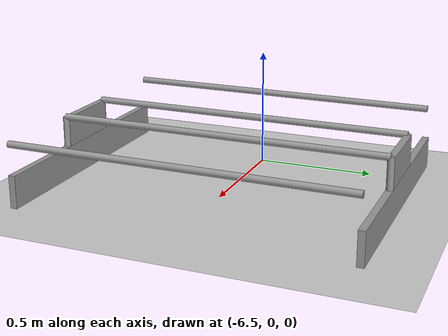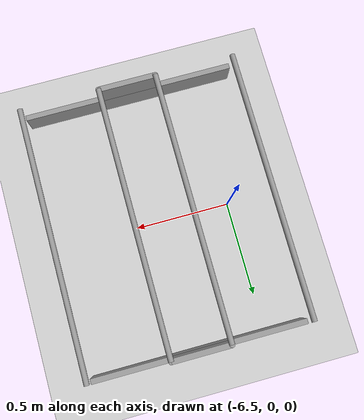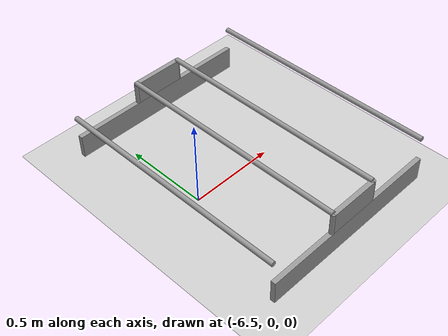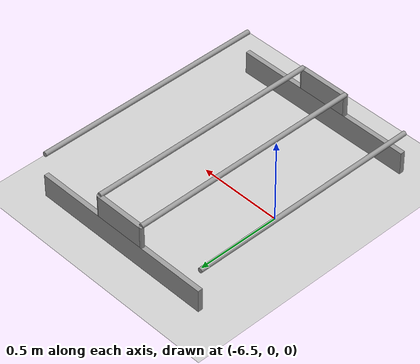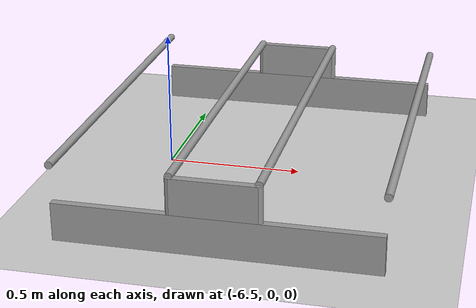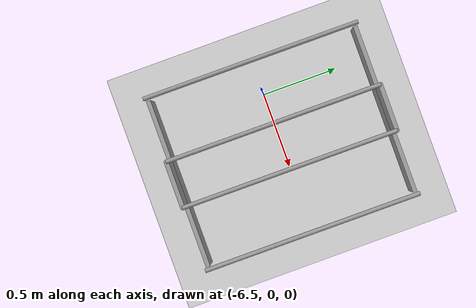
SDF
<sdf version="1.7">
 <world name="default">
  <model name="ground_plane">
   <static>1</static>
   <link name="link">
    <collision name="collision">
     <geometry><plane><normal>0 0 1</normal><size>100 100</size></plane></geometry>
     <surface>
      <contact><collide_bitmask>65535</collide_bitmask></contact>
      <friction><ode><mu>100</mu><mu2>50</mu2></ode></friction>
     </surface>
    </collision>
    <visual name="visual">
     <cast_shadows>0</cast_shadows>
     <geometry><plane><normal>0 0 1</normal><size>100 100</size></plane></geometry>
     <material>
      <script><uri>file://media/materials/scripts/gazebo.material</uri><name>Gazebo/Grey</name></script>
     </material>
    </visual>
   </link>
  </model>
  <model name="BlibliTrolley">
   <link name="link_0">
    <inertial>
     <mass>1</mass>
     <inertia>
      <ixx>0.166667</ixx>
      <ixy>0</ixy>
      <ixz>0</ixz>
      <iyy>0.166667</iyy>
      <iyz>0</iyz>
      <izz>0.166667</izz>
     </inertia>
    </inertial>
    <pose>0.7 0 0.050833 0 -0 0</pose>
    <visual name="visual">
     <geometry><box><size>0.0284 1.12 0.17</size></box></geometry>
     <material>
      <lighting>1</lighting>
      <script><uri>file://media/materials/scripts/gazebo.material</uri><name>Gazebo/Grey</name></script>
      <shader type="pixel"><normal_map>__default__</normal_map></shader>
      <ambient>0.3 0.3 0.3 1</ambient>
      <diffuse>0.7 0.7 0.7 1</diffuse>
      <specular>0.01 0.01 0.01 1</specular>
      <emissive>0 0 0 1</emissive>
     </material>
    </visual>
    <collision name="collision">
     <geometry><box><size>0.0284 1.12 0.17</size></box></geometry>
     <surface>
      <friction>
       <ode><mu>1</mu><mu2>1</mu2><fdir1>0 0 0</fdir1><slip1>0</slip1><slip2>0</slip2></ode>
       <torsional>
        <coefficient>1</coefficient>
        <patch_radius>0</patch_radius>
        <surface_radius>0</surface_radius>
        <use_patch_radius>1</use_patch_radius>
        <ode><slip>0</slip></ode>
       </torsional>
      </friction>
      <bounce><restitution_coefficient>0</restitution_coefficient><threshold>1e+06</threshold></bounce>
      <contact>
       <collide_without_contact>0</collide_without_contact>
       <collide_without_contact_bitmask>1</collide_without_contact_bitmask>
       <collide_bitmask>1</collide_bitmask>
       <ode>
        <soft_cfm>0</soft_cfm>
        <soft_erp>0.2</soft_erp>
        <kp>1e+13</kp>
        <kd>1</kd>
        <max_vel>0.01</max_vel>
        <min_depth>0</min_depth>
       </ode>
       <bullet>
        <split_impulse>1</split_impulse>
        <split_impulse_penetration_threshold>-0.01</split_impulse_penetration_threshold>
        <soft_cfm>0</soft_cfm>
        <soft_erp>0.2</soft_erp>
        <kp>1e+13</kp>
        <kd>1</kd>
       </bullet>
      </contact>
     </surface>
    </collision>
   </link>
   <link name="link_0_clone">
    <inertial>
     <mass>1</mass>
     <inertia>
      <ixx>0.166667</ixx>
      <ixy>0</ixy>
      <ixz>0</ixz>
      <iyy>0.166667</iyy>
      <iyz>0</iyz>
      <izz>0.166667</izz>
     </inertia>
    </inertial>
    <pose>-0.7 0 0.050833 0 -0 0</pose>
    <visual name="visual">
     <geometry><box><size>0.0284 1.12 0.17</size></box></geometry>
     <material>
      <lighting>1</lighting>
      <script><uri>file://media/materials/scripts/gazebo.material</uri><name>Gazebo/Grey</name></script>
      <shader type="pixel"><normal_map>__default__</normal_map></shader>
      <ambient>0.3 0.3 0.3 1</ambient>
      <diffuse>0.7 0.7 0.7 1</diffuse>
      <specular>0.01 0.01 0.01 1</specular>
      <emissive>0 0 0 1</emissive>
     </material>
    </visual>
    <collision name="collision">
     <geometry><box><size>0.0284 1.12 0.17</size></box></geometry>
     <surface>
      <friction>
       <ode><mu>1</mu><mu2>1</mu2><fdir1>0 0 0</fdir1><slip1>0</slip1><slip2>0</slip2></ode>
       <torsional>
        <coefficient>1</coefficient>
        <patch_radius>0</patch_radius>
        <surface_radius>0</surface_radius>
        <use_patch_radius>1</use_patch_radius>
        <ode><slip>0</slip></ode>
       </torsional>
      </friction>
      <bounce><restitution_coefficient>0</restitution_coefficient><threshold>1e+06</threshold></bounce>
      <contact>
       <collide_without_contact>0</collide_without_contact>
       <collide_without_contact_bitmask>1</collide_without_contact_bitmask>
       <collide_bitmask>1</collide_bitmask>
       <ode>
        <soft_cfm>0</soft_cfm>
        <soft_erp>0.2</soft_erp>
        <kp>1e+13</kp>
        <kd>1</kd>
        <max_vel>0.01</max_vel>
        <min_depth>0</min_depth>
       </ode>
       <bullet>
        <split_impulse>1</split_impulse>
        <split_impulse_penetration_threshold>-0.01</split_impulse_penetration_threshold>
        <soft_cfm>0</soft_cfm>
        <soft_erp>0.2</soft_erp>
        <kp>1e+13</kp>
        <kd>1</kd>
       </bullet>
      </contact>
     </surface>
    </collision>
   </link>
   <link name="link_0_clone_clone">
    <inertial>
     <mass>1</mass>
     <inertia>
      <ixx>0.166667</ixx>
      <ixy>0</ixy>
      <ixz>0</ixz>
      <iyy>0.166667</iyy>
      <iyz>0</iyz>
      <izz>0.166667</izz>
     </inertia>
    </inertial>
    <pose>-0.7 0 0.200833 0 -0 0</pose>
    <visual name="visual">
     <geometry><box><size>0.0284 0.3 0.13</size></box></geometry>
     <material>
      <lighting>1</lighting>
      <script><uri>file://media/materials/scripts/gazebo.material</uri><name>Gazebo/Grey</name></script>
      <shader type="pixel"><normal_map>__default__</normal_map></shader>
      <ambient>0.3 0.3 0.3 1</ambient>
      <diffuse>0.7 0.7 0.7 1</diffuse>
      <specular>0.01 0.01 0.01 1</specular>
      <emissive>0 0 0 1</emissive>
     </material>
    </visual>
    <collision name="collision">
     <geometry><box><size>0.0284 0.3 0.13</size></box></geometry>
     <surface>
      <friction>
       <ode><mu>1</mu><mu2>1</mu2><fdir1>0 0 0</fdir1><slip1>0</slip1><slip2>0</slip2></ode>
       <torsional>
        <coefficient>1</coefficient>
        <patch_radius>0</patch_radius>
        <surface_radius>0</surface_radius>
        <use_patch_radius>1</use_patch_radius>
        <ode><slip>0</slip></ode>
       </torsional>
      </friction>
      <bounce><restitution_coefficient>0</restitution_coefficient><threshold>1e+06</threshold></bounce>
      <contact>
       <collide_without_contact>0</collide_without_contact>
       <collide_without_contact_bitmask>1</collide_without_contact_bitmask>
       <collide_bitmask>1</collide_bitmask>
       <ode>
        <soft_cfm>0</soft_cfm>
        <soft_erp>0.2</soft_erp>
        <kp>1e+13</kp>
        <kd>1</kd>
        <max_vel>0.01</max_vel>
        <min_depth>0</min_depth>
       </ode>
       <bullet>
        <split_impulse>1</split_impulse>
        <split_impulse_penetration_threshold>-0.01</split_impulse_penetration_threshold>
        <soft_cfm>0</soft_cfm>
        <soft_erp>0.2</soft_erp>
        <kp>1e+13</kp>
        <kd>1</kd>
       </bullet>
      </contact>
     </surface>
    </collision>
   </link>
   <link name="link_0_clone_clone_clone">
    <inertial>
     <mass>1</mass>
     <inertia>
      <ixx>0.166667</ixx>
      <ixy>0</ixy>
      <ixz>0</ixz>
      <iyy>0.166667</iyy>
      <iyz>0</iyz>
      <izz>0.166667</izz>
     </inertia>
    </inertial>
    <pose>0.7 0 0.200833 0 -0 0</pose>
    <visual name="visual">
     <geometry><box><size>0.0284 0.3 0.13</size></box></geometry>
     <material>
      <lighting>1</lighting>
      <script><uri>file://media/materials/scripts/gazebo.material</uri><name>Gazebo/Grey</name></script>
      <shader type="pixel"><normal_map>__default__</normal_map></shader>
      <ambient>0.3 0.3 0.3 1</ambient>
      <diffuse>0.7 0.7 0.7 1</diffuse>
      <specular>0.01 0.01 0.01 1</specular>
      <emissive>0 0 0 1</emissive>
     </material>
    </visual>
    <collision name="collision">
     <geometry><box><size>0.0284 0.3 0.13</size></box></geometry>
     <surface>
      <friction>
       <ode><mu>1</mu><mu2>1</mu2><fdir1>0 0 0</fdir1><slip1>0</slip1><slip2>0</slip2></ode>
       <torsional>
        <coefficient>1</coefficient>
        <patch_radius>0</patch_radius>
        <surface_radius>0</surface_radius>
        <use_patch_radius>1</use_patch_radius>
        <ode><slip>0</slip></ode>
       </torsional>
      </friction>
      <bounce><restitution_coefficient>0</restitution_coefficient><threshold>1e+06</threshold></bounce>
      <contact>
       <collide_without_contact>0</collide_without_contact>
       <collide_without_contact_bitmask>1</collide_without_contact_bitmask>
       <collide_bitmask>1</collide_bitmask>
       <ode>
        <soft_cfm>0</soft_cfm>
        <soft_erp>0.2</soft_erp>
        <kp>1e+13</kp>
        <kd>1</kd>
        <max_vel>0.01</max_vel>
        <min_depth>0</min_depth>
       </ode>
       <bullet>
        <split_impulse>1</split_impulse>
        <split_impulse_penetration_threshold>-0.01</split_impulse_penetration_threshold>
        <soft_cfm>0</soft_cfm>
        <soft_erp>0.2</soft_erp>
        <kp>1e+13</kp>
        <kd>1</kd>
       </bullet>
      </contact>
     </surface>
    </collision>
   </link>
   <link name="link_1">
    <inertial>
     <mass>1</mass>
     <inertia><ixx>0.145833</ixx><ixy>0</ixy><ixz>0</ixz><iyy>0.145833</iyy><iyz>0</iyz><izz>0.125</izz></inertia>
    </inertial>
    <pose>0.7 0.15 0.200833 0 -0 0</pose>
    <visual name="visual">
     <geometry><cylinder><radius>0.0142</radius><length>0.13</length></cylinder></geometry>
     <material>
      <lighting>1</lighting>
      <script><uri>file://media/materials/scripts/gazebo.material</uri><name>Gazebo/Grey</name></script>
      <shader type="pixel"><normal_map>__default__</normal_map></shader>
      <ambient>0.3 0.3 0.3 1</ambient>
      <diffuse>0.7 0.7 0.7 1</diffuse>
      <specular>0.01 0.01 0.01 1</specular>
      <emissive>0 0 0 1</emissive>
     </material>
    </visual>
    <collision name="collision">
     <geometry><cylinder><radius>0.0142</radius><length>0.13</length></cylinder></geometry>
     <surface>
      <friction>
       <ode><mu>1</mu><mu2>1</mu2><fdir1>0 0 0</fdir1><slip1>0</slip1><slip2>0</slip2></ode>
       <torsional>
        <coefficient>1</coefficient>
        <patch_radius>0</patch_radius>
        <surface_radius>0</surface_radius>
        <use_patch_radius>1</use_patch_radius>
        <ode><slip>0</slip></ode>
       </torsional>
      </friction>
      <bounce><restitution_coefficient>0</restitution_coefficient><threshold>1e+06</threshold></bounce>
      <contact>
       <collide_without_contact>0</collide_without_contact>
       <collide_without_contact_bitmask>1</collide_without_contact_bitmask>
       <collide_bitmask>1</collide_bitmask>
       <ode>
        <soft_cfm>0</soft_cfm>
        <soft_erp>0.2</soft_erp>
        <kp>1e+13</kp>
        <kd>1</kd>
        <max_vel>0.01</max_vel>
        <min_depth>0</min_depth>
       </ode>
       <bullet>
        <split_impulse>1</split_impulse>
        <split_impulse_penetration_threshold>-0.01</split_impulse_penetration_threshold>
        <soft_cfm>0</soft_cfm>
        <soft_erp>0.2</soft_erp>
        <kp>1e+13</kp>
        <kd>1</kd>
       </bullet>
      </contact>
     </surface>
    </collision>
   </link>
   <link name="link_1_clone">
    <inertial>
     <mass>1</mass>
     <inertia><ixx>0.145833</ixx><ixy>0</ixy><ixz>0</ixz><iyy>0.145833</iyy><iyz>0</iyz><izz>0.125</izz></inertia>
    </inertial>
    <pose>0.7 -0.15 0.200833 0 -0 0</pose>
    <visual name="visual">
     <geometry><cylinder><radius>0.0142</radius><length>0.13</length></cylinder></geometry>
     <material>
      <lighting>1</lighting>
      <script><uri>file://media/materials/scripts/gazebo.material</uri><name>Gazebo/Grey</name></script>
      <shader type="pixel"><normal_map>__default__</normal_map></shader>
      <ambient>0.3 0.3 0.3 1</ambient>
      <diffuse>0.7 0.7 0.7 1</diffuse>
      <specular>0.01 0.01 0.01 1</specular>
      <emissive>0 0 0 1</emissive>
     </material>
    </visual>
    <collision name="collision">
     <geometry><cylinder><radius>0.0142</radius><length>0.13</length></cylinder></geometry>
     <surface>
      <friction>
       <ode><mu>1</mu><mu2>1</mu2><fdir1>0 0 0</fdir1><slip1>0</slip1><slip2>0</slip2></ode>
       <torsional>
        <coefficient>1</coefficient>
        <patch_radius>0</patch_radius>
        <surface_radius>0</surface_radius>
        <use_patch_radius>1</use_patch_radius>
        <ode><slip>0</slip></ode>
       </torsional>
      </friction>
      <bounce><restitution_coefficient>0</restitution_coefficient><threshold>1e+06</threshold></bounce>
      <contact>
       <collide_without_contact>0</collide_without_contact>
       <collide_without_contact_bitmask>1</collide_without_contact_bitmask>
       <collide_bitmask>1</collide_bitmask>
       <ode>
        <soft_cfm>0</soft_cfm>
        <soft_erp>0.2</soft_erp>
        <kp>1e+13</kp>
        <kd>1</kd>
        <max_vel>0.01</max_vel>
        <min_depth>0</min_depth>
       </ode>
       <bullet>
        <split_impulse>1</split_impulse>
        <split_impulse_penetration_threshold>-0.01</split_impulse_penetration_threshold>
        <soft_cfm>0</soft_cfm>
        <soft_erp>0.2</soft_erp>
        <kp>1e+13</kp>
        <kd>1</kd>
       </bullet>
      </contact>
     </surface>
    </collision>
   </link>
   <link name="link_1_clone_0">
    <inertial>
     <mass>1</mass>
     <inertia><ixx>0.145833</ixx><ixy>0</ixy><ixz>0</ixz><iyy>0.145833</iyy><iyz>0</iyz><izz>0.125</izz></inertia>
    </inertial>
    <pose>-0.7 0.15 0.200833 0 -0 0</pose>
    <visual name="visual">
     <geometry><cylinder><radius>0.0142</radius><length>0.13</length></cylinder></geometry>
     <material>
      <lighting>1</lighting>
      <script><uri>file://media/materials/scripts/gazebo.material</uri><name>Gazebo/Grey</name></script>
      <shader type="pixel"><normal_map>__default__</normal_map></shader>
      <ambient>0.3 0.3 0.3 1</ambient>
      <diffuse>0.7 0.7 0.7 1</diffuse>
      <specular>0.01 0.01 0.01 1</specular>
      <emissive>0 0 0 1</emissive>
     </material>
    </visual>
    <collision name="collision">
     <geometry><cylinder><radius>0.0142</radius><length>0.13</length></cylinder></geometry>
     <surface>
      <friction>
       <ode><mu>1</mu><mu2>1</mu2><fdir1>0 0 0</fdir1><slip1>0</slip1><slip2>0</slip2></ode>
       <torsional>
        <coefficient>1</coefficient>
        <patch_radius>0</patch_radius>
        <surface_radius>0</surface_radius>
        <use_patch_radius>1</use_patch_radius>
        <ode><slip>0</slip></ode>
       </torsional>
      </friction>
      <bounce><restitution_coefficient>0</restitution_coefficient><threshold>1e+06</threshold></bounce>
      <contact>
       <collide_without_contact>0</collide_without_contact>
       <collide_without_contact_bitmask>1</collide_without_contact_bitmask>
       <collide_bitmask>1</collide_bitmask>
       <ode>
        <soft_cfm>0</soft_cfm>
        <soft_erp>0.2</soft_erp>
        <kp>1e+13</kp>
        <kd>1</kd>
        <max_vel>0.01</max_vel>
        <min_depth>0</min_depth>
       </ode>
       <bullet>
        <split_impulse>1</split_impulse>
        <split_impulse_penetration_threshold>-0.01</split_impulse_penetration_threshold>
        <soft_cfm>0</soft_cfm>
        <soft_erp>0.2</soft_erp>
        <kp>1e+13</kp>
        <kd>1</kd>
       </bullet>
      </contact>
     </surface>
    </collision>
   </link>
   <link name="link_1_clone_1">
    <inertial>
     <mass>1</mass>
     <inertia><ixx>0.145833</ixx><ixy>0</ixy><ixz>0</ixz><iyy>0.145833</iyy><iyz>0</iyz><izz>0.125</izz></inertia>
    </inertial>
    <pose>-0.7 -0.15 0.200833 0 -0 0</pose>
    <visual name="visual">
     <geometry><cylinder><radius>0.0142</radius><length>0.13</length></cylinder></geometry>
     <material>
      <lighting>1</lighting>
      <script><uri>file://media/materials/scripts/gazebo.material</uri><name>Gazebo/Grey</name></script>
      <shader type="pixel"><normal_map>__default__</normal_map></shader>
      <ambient>0.3 0.3 0.3 1</ambient>
      <diffuse>0.7 0.7 0.7 1</diffuse>
      <specular>0.01 0.01 0.01 1</specular>
      <emissive>0 0 0 1</emissive>
     </material>
    </visual>
    <collision name="collision">
     <geometry><cylinder><radius>0.0142</radius><length>0.13</length></cylinder></geometry>
     <surface>
      <friction>
       <ode><mu>1</mu><mu2>1</mu2><fdir1>0 0 0</fdir1><slip1>0</slip1><slip2>0</slip2></ode>
       <torsional>
        <coefficient>1</coefficient>
        <patch_radius>0</patch_radius>
        <surface_radius>0</surface_radius>
        <use_patch_radius>1</use_patch_radius>
        <ode><slip>0</slip></ode>
       </torsional>
      </friction>
      <bounce><restitution_coefficient>0</restitution_coefficient><threshold>1e+06</threshold></bounce>
      <contact>
       <collide_without_contact>0</collide_without_contact>
       <collide_without_contact_bitmask>1</collide_without_contact_bitmask>
       <collide_bitmask>1</collide_bitmask>
       <ode>
        <soft_cfm>0</soft_cfm>
        <soft_erp>0.2</soft_erp>
        <kp>1e+13</kp>
        <kd>1</kd>
        <max_vel>0.01</max_vel>
        <min_depth>0</min_depth>
       </ode>
       <bullet>
        <split_impulse>1</split_impulse>
        <split_impulse_penetration_threshold>-0.01</split_impulse_penetration_threshold>
        <soft_cfm>0</soft_cfm>
        <soft_erp>0.2</soft_erp>
        <kp>1e+13</kp>
        <kd>1</kd>
       </bullet>
      </contact>
     </surface>
    </collision>
   </link>
   <link name="link_2">
    <inertial>
     <mass>1</mass>
     <inertia><ixx>0.145833</ixx><ixy>0</ixy><ixz>0</ixz><iyy>0.145833</iyy><iyz>0</iyz><izz>0.125</izz></inertia>
    </inertial>
    <pose>0 0.56 0.265833 1.57 -0 1.57</pose>
    <visual name="visual">
     <geometry><cylinder><radius>0.0142</radius><length>1.4</length></cylinder></geometry>
     <material>
      <lighting>1</lighting>
      <script><uri>file://media/materials/scripts/gazebo.material</uri><name>Gazebo/Grey</name></script>
      <shader type="pixel"><normal_map>__default__</normal_map></shader>
      <ambient>0.3 0.3 0.3 1</ambient>
      <diffuse>0.7 0.7 0.7 1</diffuse>
      <specular>0.01 0.01 0.01 1</specular>
      <emissive>0 0 0 1</emissive>
     </material>
    </visual>
    <collision name="collision">
     <geometry><cylinder><radius>0.0142</radius><length>1.4</length></cylinder></geometry>
     <surface>
      <friction>
       <ode><mu>1</mu><mu2>1</mu2><fdir1>0 0 0</fdir1><slip1>0</slip1><slip2>0</slip2></ode>
       <torsional>
        <coefficient>1</coefficient>
        <patch_radius>0</patch_radius>
        <surface_radius>0</surface_radius>
        <use_patch_radius>1</use_patch_radius>
        <ode><slip>0</slip></ode>
       </torsional>
      </friction>
      <bounce><restitution_coefficient>0</restitution_coefficient><threshold>1e+06</threshold></bounce>
      <contact>
       <collide_without_contact>0</collide_without_contact>
       <collide_without_contact_bitmask>1</collide_without_contact_bitmask>
       <collide_bitmask>1</collide_bitmask>
       <ode>
        <soft_cfm>0</soft_cfm>
        <soft_erp>0.2</soft_erp>
        <kp>1e+13</kp>
        <kd>1</kd>
        <max_vel>0.01</max_vel>
        <min_depth>0</min_depth>
       </ode>
       <bullet>
        <split_impulse>1</split_impulse>
        <split_impulse_penetration_threshold>-0.01</split_impulse_penetration_threshold>
        <soft_cfm>0</soft_cfm>
        <soft_erp>0.2</soft_erp>
        <kp>1e+13</kp>
        <kd>1</kd>
       </bullet>
      </contact>
     </surface>
    </collision>
   </link>
   <link name="link_2_clone">
    <inertial>
     <mass>1</mass>
     <inertia><ixx>0.145833</ixx><ixy>0</ixy><ixz>0</ixz><iyy>0.145833</iyy><iyz>0</iyz><izz>0.125</izz></inertia>
    </inertial>
    <pose>0 -0.56 0.265833 1.57 -0 1.57</pose>
    <visual name="visual">
     <geometry><cylinder><radius>0.0142</radius><length>1.4</length></cylinder></geometry>
     <material>
      <lighting>1</lighting>
      <script><uri>file://media/materials/scripts/gazebo.material</uri><name>Gazebo/Grey</name></script>
      <shader type="pixel"><normal_map>__default__</normal_map></shader>
      <ambient>0.3 0.3 0.3 1</ambient>
      <diffuse>0.7 0.7 0.7 1</diffuse>
      <specular>0.01 0.01 0.01 1</specular>
      <emissive>0 0 0 1</emissive>
     </material>
    </visual>
    <collision name="collision">
     <geometry><cylinder><radius>0.0142</radius><length>1.4</length></cylinder></geometry>
     <surface>
      <friction>
       <ode><mu>1</mu><mu2>1</mu2><fdir1>0 0 0</fdir1><slip1>0</slip1><slip2>0</slip2></ode>
       <torsional>
        <coefficient>1</coefficient>
        <patch_radius>0</patch_radius>
        <surface_radius>0</surface_radius>
        <use_patch_radius>1</use_patch_radius>
        <ode><slip>0</slip></ode>
       </torsional>
      </friction>
      <bounce><restitution_coefficient>0</restitution_coefficient><threshold>1e+06</threshold></bounce>
      <contact>
       <collide_without_contact>0</collide_without_contact>
       <collide_without_contact_bitmask>1</collide_without_contact_bitmask>
       <collide_bitmask>1</collide_bitmask>
       <ode>
        <soft_cfm>0</soft_cfm>
        <soft_erp>0.2</soft_erp>
        <kp>1e+13</kp>
        <kd>1</kd>
        <max_vel>0.01</max_vel>
        <min_depth>0</min_depth>
       </ode>
       <bullet>
        <split_impulse>1</split_impulse>
        <split_impulse_penetration_threshold>-0.01</split_impulse_penetration_threshold>
        <soft_cfm>0</soft_cfm>
        <soft_erp>0.2</soft_erp>
        <kp>1e+13</kp>
        <kd>1</kd>
       </bullet>
      </contact>
     </surface>
    </collision>
   </link>
   <link name="link_2_clone_0">
    <inertial>
     <mass>1</mass>
     <inertia><ixx>0.145833</ixx><ixy>0</ixy><ixz>0</ixz><iyy>0.145833</iyy><iyz>0</iyz><izz>0.125</izz></inertia>
    </inertial>
    <pose>0 0.15 0.265833 1.57 -0 1.57</pose>
    <visual name="visual">
     <geometry><cylinder><radius>0.0142</radius><length>1.4</length></cylinder></geometry>
     <material>
      <lighting>1</lighting>
      <script><uri>file://media/materials/scripts/gazebo.material</uri><name>Gazebo/Grey</name></script>
      <shader type="pixel"><normal_map>__default__</normal_map></shader>
      <ambient>0.3 0.3 0.3 1</ambient>
      <diffuse>0.7 0.7 0.7 1</diffuse>
      <specular>0.01 0.01 0.01 1</specular>
      <emissive>0 0 0 1</emissive>
     </material>
    </visual>
    <collision name="collision">
     <geometry><cylinder><radius>0.0142</radius><length>1.4</length></cylinder></geometry>
     <surface>
      <friction>
       <ode><mu>1</mu><mu2>1</mu2><fdir1>0 0 0</fdir1><slip1>0</slip1><slip2>0</slip2></ode>
       <torsional>
        <coefficient>1</coefficient>
        <patch_radius>0</patch_radius>
        <surface_radius>0</surface_radius>
        <use_patch_radius>1</use_patch_radius>
        <ode><slip>0</slip></ode>
       </torsional>
      </friction>
      <bounce><restitution_coefficient>0</restitution_coefficient><threshold>1e+06</threshold></bounce>
      <contact>
       <collide_without_contact>0</collide_without_contact>
       <collide_without_contact_bitmask>1</collide_without_contact_bitmask>
       <collide_bitmask>1</collide_bitmask>
       <ode>
        <soft_cfm>0</soft_cfm>
        <soft_erp>0.2</soft_erp>
        <kp>1e+13</kp>
        <kd>1</kd>
        <max_vel>0.01</max_vel>
        <min_depth>0</min_depth>
       </ode>
       <bullet>
        <split_impulse>1</split_impulse>
        <split_impulse_penetration_threshold>-0.01</split_impulse_penetration_threshold>
        <soft_cfm>0</soft_cfm>
        <soft_erp>0.2</soft_erp>
        <kp>1e+13</kp>
        <kd>1</kd>
       </bullet>
      </contact>
     </surface>
    </collision>
   </link>
   <link name="link_2_clone_1">
    <inertial>
     <mass>1</mass>
     <inertia><ixx>0.145833</ixx><ixy>0</ixy><ixz>0</ixz><iyy>0.145833</iyy><iyz>0</iyz><izz>0.125</izz></inertia>
    </inertial>
    <pose>0 -0.15 0.265833 1.57 -0 1.57</pose>
    <visual name="visual">
     <geometry><cylinder><radius>0.0142</radius><length>1.4</length></cylinder></geometry>
     <material>
      <lighting>1</lighting>
      <script><uri>file://media/materials/scripts/gazebo.material</uri><name>Gazebo/Grey</name></script>
      <shader type="pixel"><normal_map>__default__</normal_map></shader>
      <ambient>0.3 0.3 0.3 1</ambient>
      <diffuse>0.7 0.7 0.7 1</diffuse>
      <specular>0.01 0.01 0.01 1</specular>
      <emissive>0 0 0 1</emissive>
     </material>
    </visual>
    <collision name="collision">
     <geometry><cylinder><radius>0.0142</radius><length>1.4</length></cylinder></geometry>
     <surface>
      <friction>
       <ode><mu>1</mu><mu2>1</mu2><fdir1>0 0 0</fdir1><slip1>0</slip1><slip2>0</slip2></ode>
       <torsional>
        <coefficient>1</coefficient>
        <patch_radius>0</patch_radius>
        <surface_radius>0</surface_radius>
        <use_patch_radius>1</use_patch_radius>
        <ode><slip>0</slip></ode>
       </torsional>
      </friction>
      <bounce><restitution_coefficient>0</restitution_coefficient><threshold>1e+06</threshold></bounce>
      <contact>
       <collide_without_contact>0</collide_without_contact>
       <collide_without_contact_bitmask>1</collide_without_contact_bitmask>
       <collide_bitmask>1</collide_bitmask>
       <ode>
        <soft_cfm>0</soft_cfm>
        <soft_erp>0.2</soft_erp>
        <kp>1e+13</kp>
        <kd>1</kd>
        <max_vel>0.01</max_vel>
        <min_depth>0</min_depth>
       </ode>
       <bullet>
        <split_impulse>1</split_impulse>
        <split_impulse_penetration_threshold>-0.01</split_impulse_penetration_threshold>
        <soft_cfm>0</soft_cfm>
        <soft_erp>0.2</soft_erp>
        <kp>1e+13</kp>
        <kd>1</kd>
       </bullet>
      </contact>
     </surface>
    </collision>
   </link>
   <static>1</static>
   <pose>-6.14218 -0.004384 0 0 0 -1.57144</pose>
  </model>
 </world>
</sdf>
